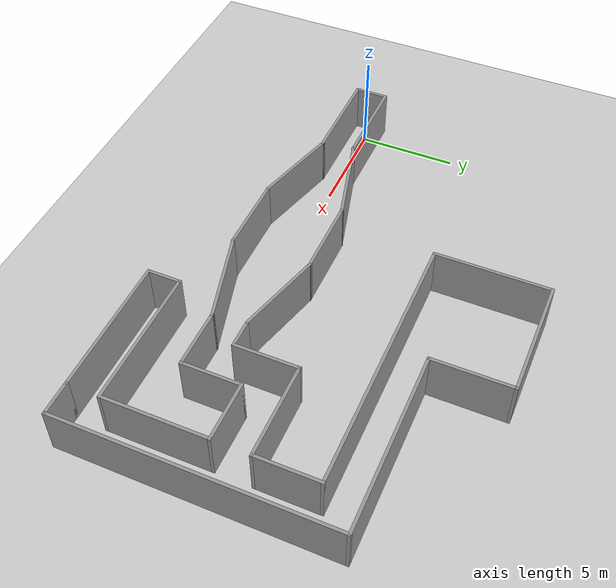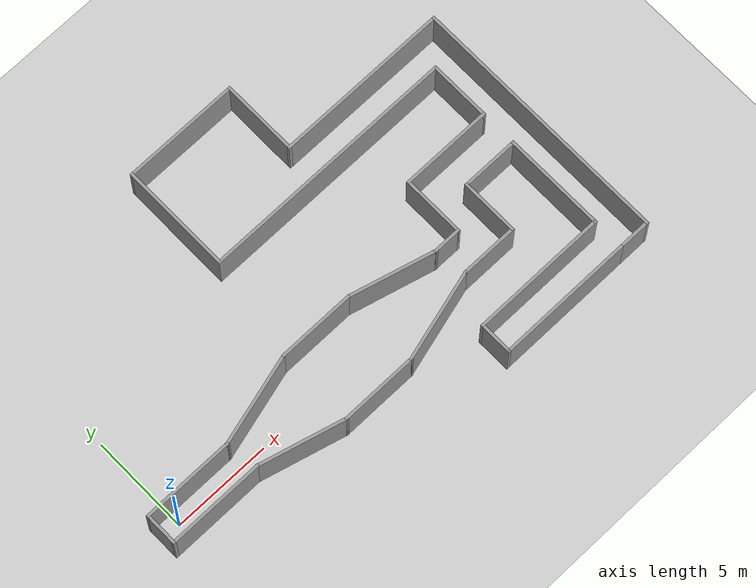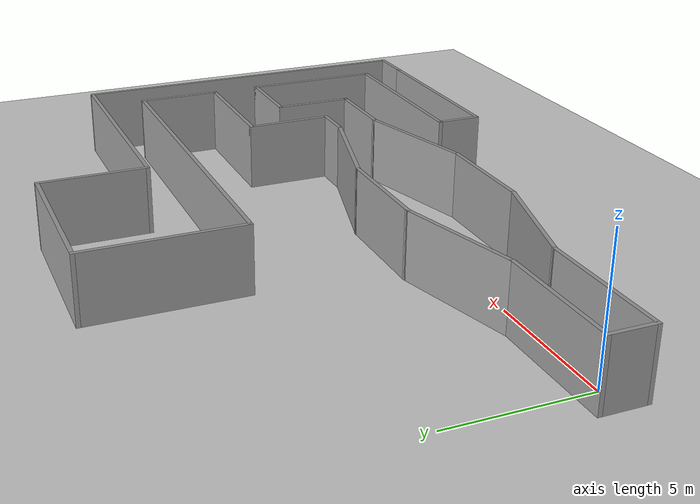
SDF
<sdf version="1.7">
 <world name="default">
  <light name="sun" type="directional">
   <pose>0 0 10 0 -0 0</pose>
   <diffuse>0.8 0.8 0.8 1</diffuse>
   <specular>0.2 0.2 0.2 1</specular>
   <attenuation>
    <range>1000</range>
    <constant>0.9</constant>
    <linear>0.01</linear>
    <quadratic>0.001</quadratic>
   </attenuation>
   <direction>-0.5 0.1 -0.9</direction>
   <spot><inner_angle>0</inner_angle><outer_angle>0</outer_angle><falloff>0</falloff></spot>
  </light>
  <model name="ground_plane">
   <static>1</static>
   <link name="link">
    <collision name="collision">
     <geometry><plane><normal>0 0 1</normal><size>100 100</size></plane></geometry>
     <surface>
      <contact><collide_bitmask>65535</collide_bitmask></contact>
      <friction><ode><mu>100</mu><mu2>50</mu2></ode></friction>
     </surface>
    </collision>
    <visual name="visual">
     <cast_shadows>0</cast_shadows>
     <geometry><plane><normal>0 0 1</normal><size>100 100</size></plane></geometry>
     <material>
      <script><uri>file://media/materials/scripts/gazebo.material</uri><name>Gazebo/Grey</name></script>
     </material>
    </visual>
   </link>
  </model>
  <gravity>0 0 -9.8</gravity>
  <magnetic_field>6e-06 2.3e-05 -4.2e-05</magnetic_field>
  <atmosphere type="adiabatic"/>
  <physics type="ode">
   <max_step_size>0.001</max_step_size>
   <real_time_factor>1</real_time_factor>
   <real_time_update_rate>1000</real_time_update_rate>
  </physics>
  <scene><ambient>0.4 0.4 0.4 1</ambient><background>0.7 0.7 0.7 1</background><shadows>1</shadows></scene>
  <spherical_coordinates>
   <surface_model>EARTH_WGS84</surface_model>
   <latitude_deg>0</latitude_deg>
   <longitude_deg>0</longitude_deg>
   <elevation>0</elevation>
   <heading_deg>0</heading_deg>
  </spherical_coordinates>
  <model name="percorsolungo">
   <pose>11.3341 3.91309 0 0 -0 0</pose>
   <link name="Wall_0">
    <collision name="Wall_0_Collision">
     <geometry><box><size>1.75 0.15 2.5</size></box></geometry>
     <pose>0 0 1.25 0 -0 0</pose>
    </collision>
    <visual name="Wall_0_Visual">
     <pose>0 0 1.25 0 -0 0</pose>
     <geometry><box><size>1.75 0.15 2.5</size></box></geometry>
     <material>
      <script><uri>file://media/materials/scripts/gazebo.material</uri><name>Gazebo/Grey</name></script>
      <ambient>1 1 1 1</ambient>
     </material>
     <meta><layer>0</layer></meta>
    </visual>
    <pose>-12.3225 -4.01471 0 0 -0 -1.5708</pose>
   </link>
   <link name="Wall_1">
    <collision name="Wall_1_Collision">
     <geometry><box><size>5 0.15 2.5</size></box></geometry>
     <pose>0 0 1.25 0 -0 0</pose>
    </collision>
    <visual name="Wall_1_Visual">
     <pose>0 0 1.25 0 -0 0</pose>
     <geometry><box><size>5 0.15 2.5</size></box></geometry>
     <material>
      <script><uri>file://media/materials/scripts/gazebo.material</uri><name>Gazebo/Grey</name></script>
      <ambient>1 1 1 1</ambient>
     </material>
     <meta><layer>0</layer></meta>
    </visual>
    <pose>-9.89752 -4.8147 0 0 -0 0</pose>
   </link>
   <link name="Wall_10">
    <collision name="Wall_10_Collision">
     <geometry><box><size>1.75 0.15 2.5</size></box></geometry>
     <pose>0 0 1.25 0 -0 0</pose>
    </collision>
    <visual name="Wall_10_Visual">
     <pose>0 0 1.25 0 -0 0</pose>
     <geometry><box><size>1.75 0.15 2.5</size></box></geometry>
     <material>
      <script><uri>file://media/materials/scripts/gazebo.material</uri><name>Gazebo/Grey</name></script>
      <ambient>1 1 1 1</ambient>
     </material>
     <meta><layer>0</layer></meta>
    </visual>
    <pose>3.87252 -7.8 0 0 -0 -1.5708</pose>
   </link>
   <link name="Wall_11">
    <collision name="Wall_11_Collision">
     <geometry><box><size>7 0.15 2.5</size></box></geometry>
     <pose>0 0 1.25 0 -0 0</pose>
    </collision>
    <visual name="Wall_11_Visual">
     <pose>0 0 1.25 0 -0 0</pose>
     <geometry><box><size>7 0.15 2.5</size></box></geometry>
     <material>
      <script><uri>file://media/materials/scripts/gazebo.material</uri><name>Gazebo/Grey</name></script>
      <ambient>1 1 1 1</ambient>
     </material>
     <meta><layer>0</layer></meta>
    </visual>
    <pose>7.29752 -8.6 0 0 -0 0</pose>
   </link>
   <link name="Wall_12">
    <collision name="Wall_12_Collision">
     <geometry><box><size>1.75 0.15 2.5</size></box></geometry>
     <pose>0 0 1.25 0 -0 0</pose>
    </collision>
    <visual name="Wall_12_Visual">
     <pose>0 0 1.25 0 -0 0</pose>
     <geometry><box><size>1.75 0.15 2.5</size></box></geometry>
     <material>
      <script><uri>file://media/materials/scripts/gazebo.material</uri><name>Gazebo/Grey</name></script>
      <ambient>1 1 1 1</ambient>
     </material>
     <meta><layer>0</layer></meta>
    </visual>
    <pose>11.5225 -8.6 0 0 -0 0</pose>
   </link>
   <link name="Wall_13">
    <collision name="Wall_13_Collision">
     <geometry><box><size>13.5 0.15 2.5</size></box></geometry>
     <pose>0 0 1.25 0 -0 0</pose>
    </collision>
    <visual name="Wall_13_Visual">
     <pose>0 0 1.25 0 -0 0</pose>
     <geometry><box><size>13.5 0.15 2.5</size></box></geometry>
     <material>
      <script><uri>file://media/materials/scripts/gazebo.material</uri><name>Gazebo/Grey</name></script>
      <ambient>1 1 1 1</ambient>
     </material>
     <meta><layer>0</layer></meta>
    </visual>
    <pose>12.3225 -1.925 0 0 -0 1.5708</pose>
   </link>
   <link name="Wall_14">
    <collision name="Wall_14_Collision">
     <geometry><box><size>9 0.15 2.5</size></box></geometry>
     <pose>0 0 1.25 0 -0 0</pose>
    </collision>
    <visual name="Wall_14_Visual">
     <pose>0 0 1.25 0 -0 0</pose>
     <geometry><box><size>9 0.15 2.5</size></box></geometry>
     <material>
      <script><uri>file://media/materials/scripts/gazebo.material</uri><name>Gazebo/Grey</name></script>
      <ambient>1 1 1 1</ambient>
     </material>
     <meta><layer>0</layer></meta>
    </visual>
    <pose>7.89752 4.75 0 0 -0 3.14159</pose>
   </link>
   <link name="Wall_15">
    <collision name="Wall_15_Collision">
     <geometry><box><size>4 0.15 2.5</size></box></geometry>
     <pose>0 0 1.25 0 -0 0</pose>
    </collision>
    <visual name="Wall_15_Visual">
     <pose>0 0 1.25 0 -0 0</pose>
     <geometry><box><size>4 0.15 2.5</size></box></geometry>
     <material>
      <script><uri>file://media/materials/scripts/gazebo.material</uri><name>Gazebo/Grey</name></script>
      <ambient>1 1 1 1</ambient>
     </material>
     <meta><layer>0</layer></meta>
    </visual>
    <pose>3.47252 6.675 0 0 -0 1.5708</pose>
   </link>
   <link name="Wall_16">
    <collision name="Wall_16_Collision">
     <geometry><box><size>6 0.15 2.5</size></box></geometry>
     <pose>0 0 1.25 0 -0 0</pose>
    </collision>
    <visual name="Wall_16_Visual">
     <pose>0 0 1.25 0 -0 0</pose>
     <geometry><box><size>6 0.15 2.5</size></box></geometry>
     <material>
      <script><uri>file://media/materials/scripts/gazebo.material</uri><name>Gazebo/Grey</name></script>
      <ambient>1 1 1 1</ambient>
     </material>
     <meta><layer>0</layer></meta>
    </visual>
    <pose>0.547518 8.6 0 0 -0 3.14159</pose>
   </link>
   <link name="Wall_17">
    <collision name="Wall_17_Collision">
     <geometry><box><size>5.75 0.15 2.5</size></box></geometry>
     <pose>0 0 1.25 0 -0 0</pose>
    </collision>
    <visual name="Wall_17_Visual">
     <pose>0 0 1.25 0 -0 0</pose>
     <geometry><box><size>5.75 0.15 2.5</size></box></geometry>
     <material>
      <script><uri>file://media/materials/scripts/gazebo.material</uri><name>Gazebo/Grey</name></script>
      <ambient>1 1 1 1</ambient>
     </material>
     <meta><layer>0</layer></meta>
    </visual>
    <pose>-2.37748 5.8 0 0 -0 -1.5708</pose>
   </link>
   <link name="Wall_18">
    <collision name="Wall_18_Collision">
     <geometry><box><size>13.25 0.15 2.5</size></box></geometry>
     <pose>0 0 1.25 0 -0 0</pose>
    </collision>
    <visual name="Wall_18_Visual">
     <pose>0 0 1.25 0 -0 0</pose>
     <geometry><box><size>13.25 0.15 2.5</size></box></geometry>
     <material>
      <script><uri>file://media/materials/scripts/gazebo.material</uri><name>Gazebo/Grey</name></script>
      <ambient>1 1 1 1</ambient>
     </material>
     <meta><layer>0</layer></meta>
    </visual>
    <pose>4.17252 3 0 0 -0 0</pose>
   </link>
   <link name="Wall_2">
    <collision name="Wall_2_Collision">
     <geometry><box><size>4.5 0.15 2.5</size></box></geometry>
     <pose>0 0 1.25 0 -0 0</pose>
    </collision>
    <visual name="Wall_2_Visual">
     <pose>0 0 1.25 0 -0 0</pose>
     <geometry><box><size>4.5 0.15 2.5</size></box></geometry>
     <material>
      <script><uri>file://media/materials/scripts/gazebo.material</uri><name>Gazebo/Grey</name></script>
      <ambient>1 1 1 1</ambient>
     </material>
     <meta><layer>0</layer></meta>
    </visual>
    <pose>-5.37163 -5.37764 0 0 -0 -0.261799</pose>
   </link>
   <link name="Wall_20">
    <collision name="Wall_20_Collision">
     <geometry><box><size>4.75 0.15 2.5</size></box></geometry>
     <pose>0 0 1.25 0 -0 0</pose>
    </collision>
    <visual name="Wall_20_Visual">
     <pose>0 0 1.25 0 -0 0</pose>
     <geometry><box><size>4.75 0.15 2.5</size></box></geometry>
     <material>
      <script><uri>file://media/materials/scripts/gazebo.material</uri><name>Gazebo/Grey</name></script>
      <ambient>1 1 1 1</ambient>
     </material>
     <meta><layer>0</layer></meta>
    </visual>
    <pose>-10.0225 -3.2147 0 0 -0 0</pose>
   </link>
   <link name="Wall_21">
    <collision name="Wall_21_Collision">
     <geometry><box><size>4.75 0.15 2.5</size></box></geometry>
     <pose>0 0 1.25 0 -0 0</pose>
    </collision>
    <visual name="Wall_21_Visual">
     <pose>0 0 1.25 0 -0 0</pose>
     <geometry><box><size>4.75 0.15 2.5</size></box></geometry>
     <material>
      <script><uri>file://media/materials/scripts/gazebo.material</uri><name>Gazebo/Grey</name></script>
      <ambient>1 1 1 1</ambient>
     </material>
     <meta><layer>0</layer></meta>
    </visual>
    <pose>-5.50089 -2.61942 0 0 -0 0.261799</pose>
   </link>
   <link name="Wall_22">
    <collision name="Wall_22_Collision">
     <geometry><box><size>4 0.15 2.5</size></box></geometry>
     <pose>0 0 1.25 0 -0 0</pose>
    </collision>
    <visual name="Wall_22_Visual">
     <pose>0 0 1.25 0 -0 0</pose>
     <geometry><box><size>4 0.15 2.5</size></box></geometry>
     <material>
      <script><uri>file://media/materials/scripts/gazebo.material</uri><name>Gazebo/Grey</name></script>
      <ambient>1 1 1 1</ambient>
     </material>
     <meta><layer>0</layer></meta>
    </visual>
    <pose>-1.35426 -2.02414 0 0 -0 0</pose>
   </link>
   <link name="Wall_23">
    <collision name="Wall_23_Collision">
     <geometry><box><size>4.5 0.15 2.5</size></box></geometry>
     <pose>0 0 1.25 0 -0 0</pose>
    </collision>
    <visual name="Wall_23_Visual">
     <pose>0 0 1.25 0 -0 0</pose>
     <geometry><box><size>4.5 0.15 2.5</size></box></geometry>
     <material>
      <script><uri>file://media/materials/scripts/gazebo.material</uri><name>Gazebo/Grey</name></script>
      <ambient>1 1 1 1</ambient>
     </material>
     <meta><layer>0</layer></meta>
    </visual>
    <pose>2.67163 -2.58707 0 0 -0 -0.261799</pose>
   </link>
   <link name="Wall_24">
    <collision name="Wall_24_Collision">
     <geometry><box><size>1.5 0.15 2.5</size></box></geometry>
     <pose>0 0 1.25 0 -0 0</pose>
    </collision>
    <visual name="Wall_24_Visual">
     <pose>0 0 1.25 0 -0 0</pose>
     <geometry><box><size>1.5 0.15 2.5</size></box></geometry>
     <material>
      <script><uri>file://media/materials/scripts/gazebo.material</uri><name>Gazebo/Grey</name></script>
      <ambient>1 1 1 1</ambient>
     </material>
     <meta><layer>0</layer></meta>
    </visual>
    <pose>5.44752 -3.15 0 0 -0 0</pose>
   </link>
   <link name="Wall_25">
    <collision name="Wall_25_Collision">
     <geometry><box><size>3.25 0.15 2.5</size></box></geometry>
     <pose>0 0 1.25 0 -0 0</pose>
    </collision>
    <visual name="Wall_25_Visual">
     <pose>0 0 1.25 0 -0 0</pose>
     <geometry><box><size>3.25 0.15 2.5</size></box></geometry>
     <material>
      <script><uri>file://media/materials/scripts/gazebo.material</uri><name>Gazebo/Grey</name></script>
      <ambient>1 1 1 1</ambient>
     </material>
     <meta><layer>0</layer></meta>
    </visual>
    <pose>6.12252 -1.6 0 0 -0 1.5708</pose>
   </link>
   <link name="Wall_26">
    <collision name="Wall_26_Collision">
     <geometry><box><size>4.75 0.15 2.5</size></box></geometry>
     <pose>0 0 1.25 0 -0 0</pose>
    </collision>
    <visual name="Wall_26_Visual">
     <pose>0 0 1.25 0 -0 0</pose>
     <geometry><box><size>4.75 0.15 2.5</size></box></geometry>
     <material>
      <script><uri>file://media/materials/scripts/gazebo.material</uri><name>Gazebo/Grey</name></script>
      <ambient>1 1 1 1</ambient>
     </material>
     <meta><layer>0</layer></meta>
    </visual>
    <pose>8.42252 -0.05 0 0 -0 0</pose>
   </link>
   <link name="Wall_27">
    <collision name="Wall_27_Collision">
     <geometry><box><size>3.2 0.15 2.5</size></box></geometry>
     <pose>0 0 1.25 0 -0 0</pose>
    </collision>
    <visual name="Wall_27_Visual">
     <pose>0 0 1.25 0 -0 0</pose>
     <geometry><box><size>3.2 0.15 2.5</size></box></geometry>
     <material>
      <script><uri>file://media/materials/scripts/gazebo.material</uri><name>Gazebo/Grey</name></script>
      <ambient>1 1 1 1</ambient>
     </material>
     <meta><layer>0</layer></meta>
    </visual>
    <pose>10.7225 1.475 0 0 -0 1.5708</pose>
   </link>
   <link name="Wall_3">
    <collision name="Wall_3_Collision">
     <geometry><box><size>4 0.15 2.5</size></box></geometry>
     <pose>0 0 1.25 0 -0 0</pose>
    </collision>
    <visual name="Wall_3_Visual">
     <pose>0 0 1.25 0 -0 0</pose>
     <geometry><box><size>4 0.15 2.5</size></box></geometry>
     <material>
      <script><uri>file://media/materials/scripts/gazebo.material</uri><name>Gazebo/Grey</name></script>
      <ambient>1 1 1 1</ambient>
     </material>
     <meta><layer>0</layer></meta>
    </visual>
    <pose>-1.34574 -5.94057 0 0 -0 0</pose>
   </link>
   <link name="Wall_4">
    <collision name="Wall_4_Collision">
     <geometry><box><size>4.75 0.15 2.5</size></box></geometry>
     <pose>0 0 1.25 0 -0 0</pose>
    </collision>
    <visual name="Wall_4_Visual">
     <pose>0 0 1.25 0 -0 0</pose>
     <geometry><box><size>4.75 0.15 2.5</size></box></geometry>
     <material>
      <script><uri>file://media/materials/scripts/gazebo.material</uri><name>Gazebo/Grey</name></script>
      <ambient>1 1 1 1</ambient>
     </material>
     <meta><layer>0</layer></meta>
    </visual>
    <pose>2.80089 -5.34528 0 0 -0 0.261799</pose>
   </link>
   <link name="Wall_5">
    <collision name="Wall_5_Collision">
     <geometry><box><size>3 0.15 2.5</size></box></geometry>
     <pose>0 0 1.25 0 -0 0</pose>
    </collision>
    <visual name="Wall_5_Visual">
     <pose>0 0 1.25 0 -0 0</pose>
     <geometry><box><size>3 0.15 2.5</size></box></geometry>
     <material>
      <script><uri>file://media/materials/scripts/gazebo.material</uri><name>Gazebo/Grey</name></script>
      <ambient>1 1 1 1</ambient>
     </material>
     <meta><layer>0</layer></meta>
    </visual>
    <pose>6.44752 -4.75 0 0 -0 0</pose>
   </link>
   <link name="Wall_6">
    <collision name="Wall_6_Collision">
     <geometry><box><size>3 0.15 2.5</size></box></geometry>
     <pose>0 0 1.25 0 -0 0</pose>
    </collision>
    <visual name="Wall_6_Visual">
     <pose>0 0 1.25 0 -0 0</pose>
     <geometry><box><size>3 0.15 2.5</size></box></geometry>
     <material>
      <script><uri>file://media/materials/scripts/gazebo.material</uri><name>Gazebo/Grey</name></script>
      <ambient>1 1 1 1</ambient>
     </material>
     <meta><layer>0</layer></meta>
    </visual>
    <pose>7.87252 -3.325 0 0 -0 1.5708</pose>
   </link>
   <link name="Wall_7">
    <collision name="Wall_7_Collision">
     <geometry><box><size>3 0.15 2.5</size></box></geometry>
     <pose>0 0 1.25 0 -0 0</pose>
    </collision>
    <visual name="Wall_7_Visual">
     <pose>0 0 1.25 0 -0 0</pose>
     <geometry><box><size>3 0.15 2.5</size></box></geometry>
     <material>
      <script><uri>file://media/materials/scripts/gazebo.material</uri><name>Gazebo/Grey</name></script>
      <ambient>1 1 1 1</ambient>
     </material>
     <meta><layer>0</layer></meta>
    </visual>
    <pose>9.29752 -1.9 0 0 -0 0</pose>
   </link>
   <link name="Wall_8">
    <collision name="Wall_8_Collision">
     <geometry><box><size>5.25 0.15 2.5</size></box></geometry>
     <pose>0 0 1.25 0 -0 0</pose>
    </collision>
    <visual name="Wall_8_Visual">
     <pose>0 0 1.25 0 -0 0</pose>
     <geometry><box><size>5.25 0.15 2.5</size></box></geometry>
     <material>
      <script><uri>file://media/materials/scripts/gazebo.material</uri><name>Gazebo/Grey</name></script>
      <ambient>1 1 1 1</ambient>
     </material>
     <meta><layer>0</layer></meta>
    </visual>
    <pose>10.7225 -4.45 0 0 -0 -1.5708</pose>
   </link>
   <link name="Wall_9">
    <collision name="Wall_9_Collision">
     <geometry><box><size>7 0.15 2.5</size></box></geometry>
     <pose>0 0 1.25 0 -0 0</pose>
    </collision>
    <visual name="Wall_9_Visual">
     <pose>0 0 1.25 0 -0 0</pose>
     <geometry><box><size>7 0.15 2.5</size></box></geometry>
     <material>
      <script><uri>file://media/materials/scripts/gazebo.material</uri><name>Gazebo/Grey</name></script>
      <ambient>1 1 1 1</ambient>
     </material>
     <meta><layer>0</layer></meta>
    </visual>
    <pose>7.29752 -7 0 0 -0 3.14159</pose>
   </link>
   <static>1</static>
  </model>
 </world>
</sdf>
